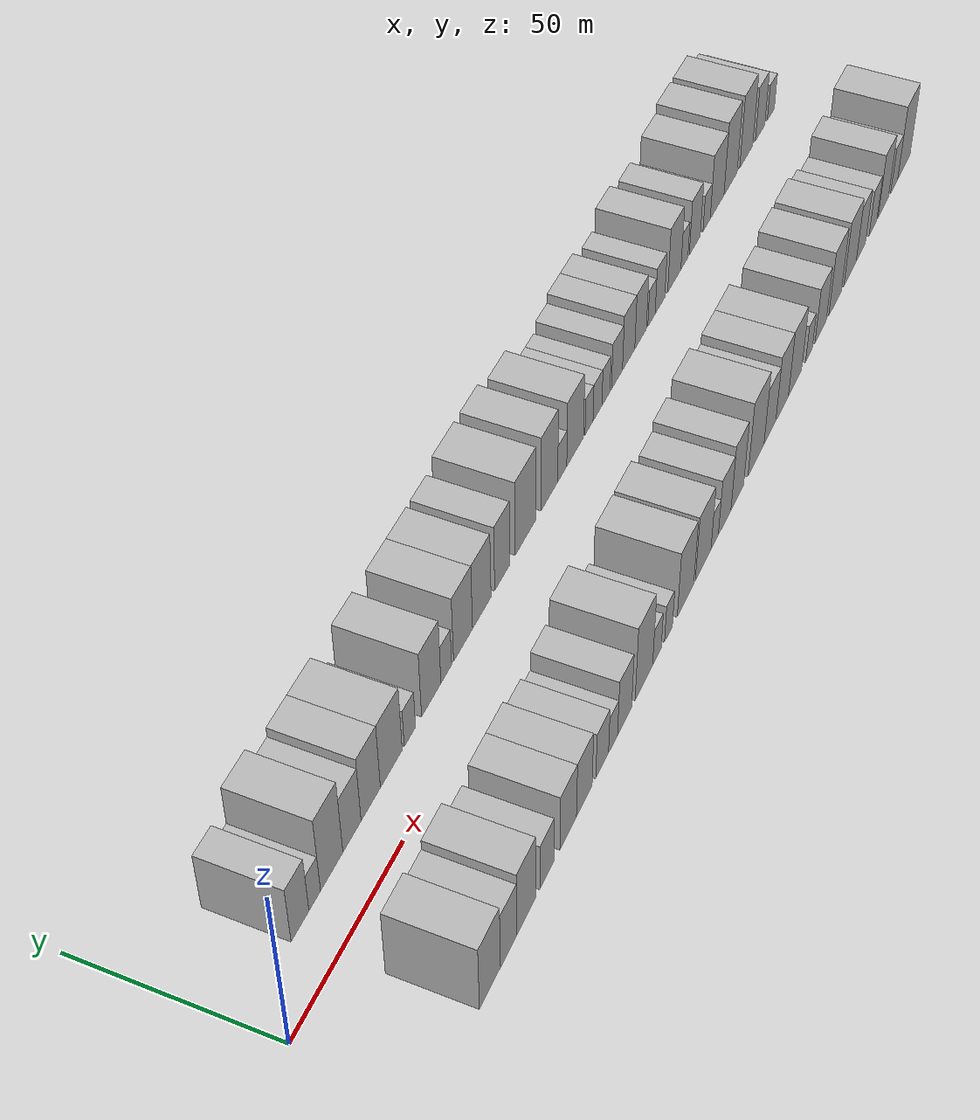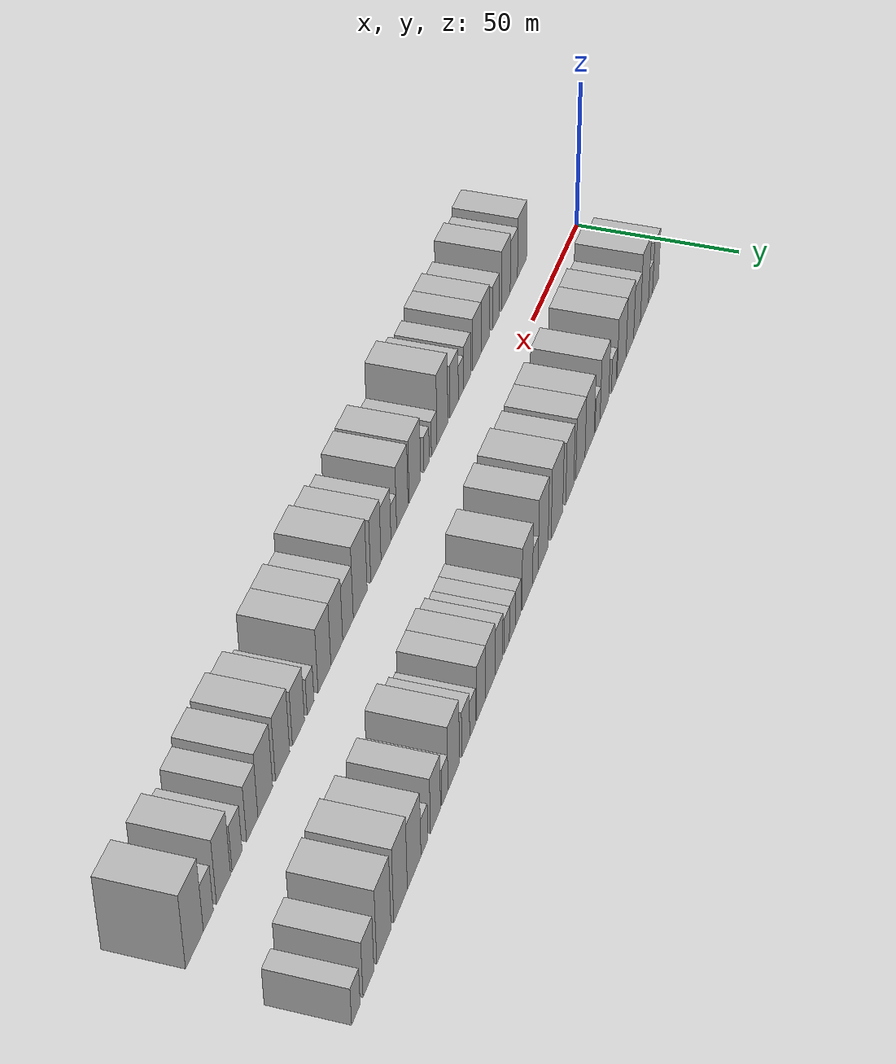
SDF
<sdf version="1.6">
 <world name="default">
  <scene>
   <sky><clouds><speed>12</speed></clouds></sky>
   <ambient>0.4 0.4 0.4 1</ambient>
   <background>0.7 0.7 0.7 1</background>
   <shadows>1</shadows>
  </scene>
  <gravity>0 0 -9.8066</gravity>
  <magnetic_field>6e-06 2.3e-05 -4.2e-05</magnetic_field>
  <physics default="0" name="default_physics" type="ode">
   <ode>
    <solver>
     <type>quick</type>
     <iters>10</iters>
     <sor>1.0</sor>
     <use_dynamic_moi_rescaling>0</use_dynamic_moi_rescaling>
    </solver>
    <constraints>
     <cfm>0</cfm>
     <erp>0.2</erp>
     <contact_max_correcting_vel>100</contact_max_correcting_vel>
     <contact_surface_layer>0.001</contact_surface_layer>
    </constraints>
   </ode>
   <max_step_size>0.004</max_step_size>
   <real_time_factor>1</real_time_factor>
   <real_time_update_rate>250</real_time_update_rate>
  </physics>
  <light name="sun" type="directional">
   <pose>0 0 10 0 0 0</pose>
   <diffuse>0.8 0.8 0.8 1</diffuse>
   <specular>0.2 0.2 0.2 1</specular>
   <attenuation>
    <range>1000</range>
    <constant>0.9</constant>
    <linear>0.01</linear>
    <quadratic>0.001</quadratic>
   </attenuation>
   <direction>-0.5 0.1 -0.9</direction>
  </light>
  <model name="building_1">
   <static>1</static>
   <pose>23.8435 20.0000 0 0.000000 0.000000 1.570796</pose>
   <link name="link">
    <pose>0 0 9.00 0 0 0</pose>
    <collision name="collision"><geometry><box><size>20.0000 7.6871 18.0000</size></box></geometry></collision>
    <visual name="visual">
     <cast_shadows>0</cast_shadows>
     <geometry><box><size>20.0000 7.6871 18.0000</size></box></geometry>
     <material>
      <script>
       <uri>model://HANNAS_wall/materials/scripts</uri>
       <uri>model://HANNAS_wall/materials/textures</uri>
       <name>vrc/HANNAS_wall</name>
      </script>
     </material>
    </visual>
   </link>
  </model>
  <model name="building_2">
   <static>1</static>
   <pose>30.2150 20.0000 0 0.000000 0.000000 1.570796</pose>
   <link name="link">
    <pose>0 0 6.00 0 0 0</pose>
    <collision name="collision"><geometry><box><size>20.0000 5.0559 12.0000</size></box></geometry></collision>
    <visual name="visual">
     <cast_shadows>0</cast_shadows>
     <geometry><box><size>20.0000 5.0559 12.0000</size></box></geometry>
     <material>
      <script>
       <uri>model://HANNAS_wall/materials/scripts</uri>
       <uri>model://HANNAS_wall/materials/textures</uri>
       <name>vrc/HANNAS_wall</name>
      </script>
     </material>
    </visual>
   </link>
  </model>
  <model name="building_3">
   <static>1</static>
   <pose>37.7222 20.0000 0 0.000000 0.000000 1.570796</pose>
   <link name="link">
    <pose>0 0 12.00 0 0 0</pose>
    <collision name="collision"><geometry><box><size>20.0000 9.9584 24.0000</size></box></geometry></collision>
    <visual name="visual">
     <cast_shadows>0</cast_shadows>
     <geometry><box><size>20.0000 9.9584 24.0000</size></box></geometry>
     <material>
      <script>
       <uri>model://HANNAS_wall/materials/scripts</uri>
       <uri>model://HANNAS_wall/materials/textures</uri>
       <name>vrc/HANNAS_wall</name>
      </script>
     </material>
    </visual>
   </link>
  </model>
  <model name="building_4">
   <static>1</static>
   <pose>46.8498 20.0000 0 0.000000 0.000000 1.570796</pose>
   <link name="link">
    <pose>0 0 9.00 0 0 0</pose>
    <collision name="collision"><geometry><box><size>20.0000 8.2967 18.0000</size></box></geometry></collision>
    <visual name="visual">
     <cast_shadows>0</cast_shadows>
     <geometry><box><size>20.0000 8.2967 18.0000</size></box></geometry>
     <material>
      <script>
       <uri>model://HANNAS_wall/materials/scripts</uri>
       <uri>model://HANNAS_wall/materials/textures</uri>
       <name>vrc/HANNAS_wall</name>
      </script>
     </material>
    </visual>
   </link>
  </model>
  <model name="building_5">
   <static>1</static>
   <pose>55.5143 20.0000 0 0.000000 0.000000 1.570796</pose>
   <link name="link">
    <pose>0 0 10.50 0 0 0</pose>
    <collision name="collision"><geometry><box><size>20.0000 9.0323 21.0000</size></box></geometry></collision>
    <visual name="visual">
     <cast_shadows>0</cast_shadows>
     <geometry><box><size>20.0000 9.0323 21.0000</size></box></geometry>
     <material>
      <script>
       <uri>model://HANNAS_wall/materials/scripts</uri>
       <uri>model://HANNAS_wall/materials/textures</uri>
       <name>vrc/HANNAS_wall</name>
      </script>
     </material>
    </visual>
   </link>
  </model>
  <model name="building_6">
   <static>1</static>
   <pose>65.2510 20.0000 0 0.000000 0.000000 1.570796</pose>
   <link name="link">
    <pose>0 0 10.50 0 0 0</pose>
    <collision name="collision"><geometry><box><size>20.0000 10.4411 21.0000</size></box></geometry></collision>
    <visual name="visual">
     <cast_shadows>0</cast_shadows>
     <geometry><box><size>20.0000 10.4411 21.0000</size></box></geometry>
     <material>
      <script>
       <uri>model://HANNAS_wall/materials/scripts</uri>
       <uri>model://HANNAS_wall/materials/textures</uri>
       <name>vrc/HANNAS_wall</name>
      </script>
     </material>
    </visual>
   </link>
  </model>
  <model name="building_7">
   <static>1</static>
   <pose>74.2370 20.0000 0 0.000000 0.000000 1.570796</pose>
   <link name="link">
    <pose>0 0 6.00 0 0 0</pose>
    <collision name="collision"><geometry><box><size>20.0000 5.5309 12.0000</size></box></geometry></collision>
    <visual name="visual">
     <cast_shadows>0</cast_shadows>
     <geometry><box><size>20.0000 5.5309 12.0000</size></box></geometry>
     <material>
      <script>
       <uri>model://HANNAS_wall/materials/scripts</uri>
       <uri>model://HANNAS_wall/materials/textures</uri>
       <name>vrc/HANNAS_wall</name>
      </script>
     </material>
    </visual>
   </link>
  </model>
  <model name="building_8">
   <static>1</static>
   <pose>84.8800 20.0000 0 0.000000 0.000000 1.570796</pose>
   <link name="link">
    <pose>0 0 10.50 0 0 0</pose>
    <collision name="collision"><geometry><box><size>20.0000 9.7551 21.0000</size></box></geometry></collision>
    <visual name="visual">
     <cast_shadows>0</cast_shadows>
     <geometry><box><size>20.0000 9.7551 21.0000</size></box></geometry>
     <material>
      <script>
       <uri>model://HANNAS_wall/materials/scripts</uri>
       <uri>model://HANNAS_wall/materials/textures</uri>
       <name>vrc/HANNAS_wall</name>
      </script>
     </material>
    </visual>
   </link>
  </model>
  <model name="building_9">
   <static>1</static>
   <pose>92.5117 20.0000 0 0.000000 0.000000 1.570796</pose>
   <link name="link">
    <pose>0 0 6.00 0 0 0</pose>
    <collision name="collision"><geometry><box><size>20.0000 5.5084 12.0000</size></box></geometry></collision>
    <visual name="visual">
     <cast_shadows>0</cast_shadows>
     <geometry><box><size>20.0000 5.5084 12.0000</size></box></geometry>
     <material>
      <script>
       <uri>model://HANNAS_wall/materials/scripts</uri>
       <uri>model://HANNAS_wall/materials/textures</uri>
       <name>vrc/HANNAS_wall</name>
      </script>
     </material>
    </visual>
   </link>
  </model>
  <model name="building_10">
   <static>1</static>
   <pose>101.2545 20.0000 0 0.000000 0.000000 1.570796</pose>
   <link name="link">
    <pose>0 0 10.50 0 0 0</pose>
    <collision name="collision"><geometry><box><size>20.0000 9.9771 21.0000</size></box></geometry></collision>
    <visual name="visual">
     <cast_shadows>0</cast_shadows>
     <geometry><box><size>20.0000 9.9771 21.0000</size></box></geometry>
     <material>
      <script>
       <uri>model://HANNAS_wall/materials/scripts</uri>
       <uri>model://HANNAS_wall/materials/textures</uri>
       <name>vrc/HANNAS_wall</name>
      </script>
     </material>
    </visual>
   </link>
  </model>
  <model name="building_11">
   <static>1</static>
   <pose>111.2242 20.0000 0 0.000000 0.000000 1.570796</pose>
   <link name="link">
    <pose>0 0 10.50 0 0 0</pose>
    <collision name="collision"><geometry><box><size>20.0000 9.9622 21.0000</size></box></geometry></collision>
    <visual name="visual">
     <cast_shadows>0</cast_shadows>
     <geometry><box><size>20.0000 9.9622 21.0000</size></box></geometry>
     <material>
      <script>
       <uri>model://HANNAS_wall/materials/scripts</uri>
       <uri>model://HANNAS_wall/materials/textures</uri>
       <name>vrc/HANNAS_wall</name>
      </script>
     </material>
    </visual>
   </link>
  </model>
  <model name="building_12">
   <static>1</static>
   <pose>122.4271 20.0000 0 0.000000 0.000000 1.570796</pose>
   <link name="link">
    <pose>0 0 10.50 0 0 0</pose>
    <collision name="collision"><geometry><box><size>20.0000 8.4437 21.0000</size></box></geometry></collision>
    <visual name="visual">
     <cast_shadows>0</cast_shadows>
     <geometry><box><size>20.0000 8.4437 21.0000</size></box></geometry>
     <material>
      <script>
       <uri>model://HANNAS_wall/materials/scripts</uri>
       <uri>model://HANNAS_wall/materials/textures</uri>
       <name>vrc/HANNAS_wall</name>
      </script>
     </material>
    </visual>
   </link>
  </model>
  <model name="building_13">
   <static>1</static>
   <pose>135.5499 20.0000 0 0.000000 0.000000 1.570796</pose>
   <link name="link">
    <pose>0 0 12.00 0 0 0</pose>
    <collision name="collision"><geometry><box><size>20.0000 11.8019 24.0000</size></box></geometry></collision>
    <visual name="visual">
     <cast_shadows>0</cast_shadows>
     <geometry><box><size>20.0000 11.8019 24.0000</size></box></geometry>
     <material>
      <script>
       <uri>model://HANNAS_wall/materials/scripts</uri>
       <uri>model://HANNAS_wall/materials/textures</uri>
       <name>vrc/HANNAS_wall</name>
      </script>
     </material>
    </visual>
   </link>
  </model>
  <model name="building_14">
   <static>1</static>
   <pose>149.3508 20.0000 0 0.000000 0.000000 1.570796</pose>
   <link name="link">
    <pose>0 0 12.00 0 0 0</pose>
    <collision name="collision"><geometry><box><size>20.0000 9.7998 24.0000</size></box></geometry></collision>
    <visual name="visual">
     <cast_shadows>0</cast_shadows>
     <geometry><box><size>20.0000 9.7998 24.0000</size></box></geometry>
     <material>
      <script>
       <uri>model://HANNAS_wall/materials/scripts</uri>
       <uri>model://HANNAS_wall/materials/textures</uri>
       <name>vrc/HANNAS_wall</name>
      </script>
     </material>
    </visual>
   </link>
  </model>
  <model name="building_15">
   <static>1</static>
   <pose>156.9666 20.0000 0 0.000000 0.000000 1.570796</pose>
   <link name="link">
    <pose>0 0 6.00 0 0 0</pose>
    <collision name="collision"><geometry><box><size>20.0000 5.4317 12.0000</size></box></geometry></collision>
    <visual name="visual">
     <cast_shadows>0</cast_shadows>
     <geometry><box><size>20.0000 5.4317 12.0000</size></box></geometry>
     <material>
      <script>
       <uri>model://HANNAS_wall/materials/scripts</uri>
       <uri>model://HANNAS_wall/materials/textures</uri>
       <name>vrc/HANNAS_wall</name>
      </script>
     </material>
    </visual>
   </link>
  </model>
  <model name="building_16">
   <static>1</static>
   <pose>164.7859 20.0000 0 0.000000 0.000000 1.570796</pose>
   <link name="link">
    <pose>0 0 10.50 0 0 0</pose>
    <collision name="collision"><geometry><box><size>20.0000 10.2070 21.0000</size></box></geometry></collision>
    <visual name="visual">
     <cast_shadows>0</cast_shadows>
     <geometry><box><size>20.0000 10.2070 21.0000</size></box></geometry>
     <material>
      <script>
       <uri>model://HANNAS_wall/materials/scripts</uri>
       <uri>model://HANNAS_wall/materials/textures</uri>
       <name>vrc/HANNAS_wall</name>
      </script>
     </material>
    </visual>
   </link>
  </model>
  <model name="building_17">
   <static>1</static>
   <pose>173.3860 20.0000 0 0.000000 0.000000 1.570796</pose>
   <link name="link">
    <pose>0 0 6.00 0 0 0</pose>
    <collision name="collision"><geometry><box><size>20.0000 4.9933 12.0000</size></box></geometry></collision>
    <visual name="visual">
     <cast_shadows>0</cast_shadows>
     <geometry><box><size>20.0000 4.9933 12.0000</size></box></geometry>
     <material>
      <script>
       <uri>model://HANNAS_wall/materials/scripts</uri>
       <uri>model://HANNAS_wall/materials/textures</uri>
       <name>vrc/HANNAS_wall</name>
      </script>
     </material>
    </visual>
   </link>
  </model>
  <model name="building_18">
   <static>1</static>
   <pose>178.7066 20.0000 0 0.000000 0.000000 1.570796</pose>
   <link name="link">
    <pose>0 0 6.00 0 0 0</pose>
    <collision name="collision"><geometry><box><size>20.0000 5.6479 12.0000</size></box></geometry></collision>
    <visual name="visual">
     <cast_shadows>0</cast_shadows>
     <geometry><box><size>20.0000 5.6479 12.0000</size></box></geometry>
     <material>
      <script>
       <uri>model://HANNAS_wall/materials/scripts</uri>
       <uri>model://HANNAS_wall/materials/textures</uri>
       <name>vrc/HANNAS_wall</name>
      </script>
     </material>
    </visual>
   </link>
  </model>
  <model name="building_19">
   <static>1</static>
   <pose>184.0761 20.0000 0 0.000000 0.000000 1.570796</pose>
   <link name="link">
    <pose>0 0 6.00 0 0 0</pose>
    <collision name="collision"><geometry><box><size>20.0000 5.0911 12.0000</size></box></geometry></collision>
    <visual name="visual">
     <cast_shadows>0</cast_shadows>
     <geometry><box><size>20.0000 5.0911 12.0000</size></box></geometry>
     <material>
      <script>
       <uri>model://HANNAS_wall/materials/scripts</uri>
       <uri>model://HANNAS_wall/materials/textures</uri>
       <name>vrc/HANNAS_wall</name>
      </script>
     </material>
    </visual>
   </link>
  </model>
  <model name="building_20">
   <static>1</static>
   <pose>191.1918 20.0000 0 0.000000 0.000000 1.570796</pose>
   <link name="link">
    <pose>0 0 7.50 0 0 0</pose>
    <collision name="collision"><geometry><box><size>20.0000 7.1403 15.0000</size></box></geometry></collision>
    <visual name="visual">
     <cast_shadows>0</cast_shadows>
     <geometry><box><size>20.0000 7.1403 15.0000</size></box></geometry>
     <material>
      <script>
       <uri>model://HANNAS_wall/materials/scripts</uri>
       <uri>model://HANNAS_wall/materials/textures</uri>
       <name>vrc/HANNAS_wall</name>
      </script>
     </material>
    </visual>
   </link>
  </model>
  <model name="building_21">
   <static>1</static>
   <pose>198.8291 20.0000 0 0.000000 0.000000 1.570796</pose>
   <link name="link">
    <pose>0 0 9.00 0 0 0</pose>
    <collision name="collision"><geometry><box><size>20.0000 8.1343 18.0000</size></box></geometry></collision>
    <visual name="visual">
     <cast_shadows>0</cast_shadows>
     <geometry><box><size>20.0000 8.1343 18.0000</size></box></geometry>
     <material>
      <script>
       <uri>model://HANNAS_wall/materials/scripts</uri>
       <uri>model://HANNAS_wall/materials/textures</uri>
       <name>vrc/HANNAS_wall</name>
      </script>
     </material>
    </visual>
   </link>
  </model>
  <model name="building_22">
   <static>1</static>
   <pose>206.7928 20.0000 0 0.000000 0.000000 1.570796</pose>
   <link name="link">
    <pose>0 0 9.00 0 0 0</pose>
    <collision name="collision"><geometry><box><size>20.0000 7.7930 18.0000</size></box></geometry></collision>
    <visual name="visual">
     <cast_shadows>0</cast_shadows>
     <geometry><box><size>20.0000 7.7930 18.0000</size></box></geometry>
     <material>
      <script>
       <uri>model://HANNAS_wall/materials/scripts</uri>
       <uri>model://HANNAS_wall/materials/textures</uri>
       <name>vrc/HANNAS_wall</name>
      </script>
     </material>
    </visual>
   </link>
  </model>
  <model name="building_23">
   <static>1</static>
   <pose>214.1908 20.0000 0 0.000000 0.000000 1.570796</pose>
   <link name="link">
    <pose>0 0 6.00 0 0 0</pose>
    <collision name="collision"><geometry><box><size>20.0000 5.0030 12.0000</size></box></geometry></collision>
    <visual name="visual">
     <cast_shadows>0</cast_shadows>
     <geometry><box><size>20.0000 5.0030 12.0000</size></box></geometry>
     <material>
      <script>
       <uri>model://HANNAS_wall/materials/scripts</uri>
       <uri>model://HANNAS_wall/materials/textures</uri>
       <name>vrc/HANNAS_wall</name>
      </script>
     </material>
    </visual>
   </link>
  </model>
  <model name="building_24">
   <static>1</static>
   <pose>220.0308 20.0000 0 0.000000 0.000000 1.570796</pose>
   <link name="link">
    <pose>0 0 7.50 0 0 0</pose>
    <collision name="collision"><geometry><box><size>20.0000 6.6769 15.0000</size></box></geometry></collision>
    <visual name="visual">
     <cast_shadows>0</cast_shadows>
     <geometry><box><size>20.0000 6.6769 15.0000</size></box></geometry>
     <material>
      <script>
       <uri>model://HANNAS_wall/materials/scripts</uri>
       <uri>model://HANNAS_wall/materials/textures</uri>
       <name>vrc/HANNAS_wall</name>
      </script>
     </material>
    </visual>
   </link>
  </model>
  <model name="building_25">
   <static>1</static>
   <pose>230.0644 20.0000 0 0.000000 0.000000 1.570796</pose>
   <link name="link">
    <pose>0 0 10.50 0 0 0</pose>
    <collision name="collision"><geometry><box><size>20.0000 9.3903 21.0000</size></box></geometry></collision>
    <visual name="visual">
     <cast_shadows>0</cast_shadows>
     <geometry><box><size>20.0000 9.3903 21.0000</size></box></geometry>
     <material>
      <script>
       <uri>model://HANNAS_wall/materials/scripts</uri>
       <uri>model://HANNAS_wall/materials/textures</uri>
       <name>vrc/HANNAS_wall</name>
      </script>
     </material>
    </visual>
   </link>
  </model>
  <model name="building_26">
   <static>1</static>
   <pose>237.2728 20.0000 0 0.000000 0.000000 1.570796</pose>
   <link name="link">
    <pose>0 0 6.00 0 0 0</pose>
    <collision name="collision"><geometry><box><size>20.0000 5.0264 12.0000</size></box></geometry></collision>
    <visual name="visual">
     <cast_shadows>0</cast_shadows>
     <geometry><box><size>20.0000 5.0264 12.0000</size></box></geometry>
     <material>
      <script>
       <uri>model://HANNAS_wall/materials/scripts</uri>
       <uri>model://HANNAS_wall/materials/textures</uri>
       <name>vrc/HANNAS_wall</name>
      </script>
     </material>
    </visual>
   </link>
  </model>
  <model name="building_27">
   <static>1</static>
   <pose>244.8036 20.0000 0 0.000000 0.000000 1.570796</pose>
   <link name="link">
    <pose>0 0 9.00 0 0 0</pose>
    <collision name="collision"><geometry><box><size>20.0000 8.0354 18.0000</size></box></geometry></collision>
    <visual name="visual">
     <cast_shadows>0</cast_shadows>
     <geometry><box><size>20.0000 8.0354 18.0000</size></box></geometry>
     <material>
      <script>
       <uri>model://HANNAS_wall/materials/scripts</uri>
       <uri>model://HANNAS_wall/materials/textures</uri>
       <name>vrc/HANNAS_wall</name>
      </script>
     </material>
    </visual>
   </link>
  </model>
  <model name="building_28">
   <static>1</static>
   <pose>253.5256 20.0000 0 0.000000 0.000000 1.570796</pose>
   <link name="link">
    <pose>0 0 6.00 0 0 0</pose>
    <collision name="collision"><geometry><box><size>20.0000 5.4085 12.0000</size></box></geometry></collision>
    <visual name="visual">
     <cast_shadows>0</cast_shadows>
     <geometry><box><size>20.0000 5.4085 12.0000</size></box></geometry>
     <material>
      <script>
       <uri>model://HANNAS_wall/materials/scripts</uri>
       <uri>model://HANNAS_wall/materials/textures</uri>
       <name>vrc/HANNAS_wall</name>
      </script>
     </material>
    </visual>
   </link>
  </model>
  <model name="building_29">
   <static>1</static>
   <pose>261.4427 20.0000 0 0.000000 0.000000 1.570796</pose>
   <link name="link">
    <pose>0 0 10.50 0 0 0</pose>
    <collision name="collision"><geometry><box><size>20.0000 10.4257 21.0000</size></box></geometry></collision>
    <visual name="visual">
     <cast_shadows>0</cast_shadows>
     <geometry><box><size>20.0000 10.4257 21.0000</size></box></geometry>
     <material>
      <script>
       <uri>model://HANNAS_wall/materials/scripts</uri>
       <uri>model://HANNAS_wall/materials/textures</uri>
       <name>vrc/HANNAS_wall</name>
      </script>
     </material>
    </visual>
   </link>
  </model>
  <model name="building_30">
   <static>1</static>
   <pose>271.7292 20.0000 0 0.000000 0.000000 1.570796</pose>
   <link name="link">
    <pose>0 0 12.00 0 0 0</pose>
    <collision name="collision"><geometry><box><size>20.0000 10.1475 24.0000</size></box></geometry></collision>
    <visual name="visual">
     <cast_shadows>0</cast_shadows>
     <geometry><box><size>20.0000 10.1475 24.0000</size></box></geometry>
     <material>
      <script>
       <uri>model://HANNAS_wall/materials/scripts</uri>
       <uri>model://HANNAS_wall/materials/textures</uri>
       <name>vrc/HANNAS_wall</name>
      </script>
     </material>
    </visual>
   </link>
  </model>
  <model name="building_31">
   <static>1</static>
   <pose>283.9838 20.0000 0 0.000000 0.000000 1.570796</pose>
   <link name="link">
    <pose>0 0 12.00 0 0 0</pose>
    <collision name="collision"><geometry><box><size>20.0000 10.3616 24.0000</size></box></geometry></collision>
    <visual name="visual">
     <cast_shadows>0</cast_shadows>
     <geometry><box><size>20.0000 10.3616 24.0000</size></box></geometry>
     <material>
      <script>
       <uri>model://HANNAS_wall/materials/scripts</uri>
       <uri>model://HANNAS_wall/materials/textures</uri>
       <name>vrc/HANNAS_wall</name>
      </script>
     </material>
    </visual>
   </link>
  </model>
  <model name="building_32">
   <static>1</static>
   <pose>295.0249 20.0000 0 0.000000 0.000000 1.570796</pose>
   <link name="link">
    <pose>0 0 9.00 0 0 0</pose>
    <collision name="collision"><geometry><box><size>20.0000 7.7207 18.0000</size></box></geometry></collision>
    <visual name="visual">
     <cast_shadows>0</cast_shadows>
     <geometry><box><size>20.0000 7.7207 18.0000</size></box></geometry>
     <material>
      <script>
       <uri>model://HANNAS_wall/materials/scripts</uri>
       <uri>model://HANNAS_wall/materials/textures</uri>
       <name>vrc/HANNAS_wall</name>
      </script>
     </material>
    </visual>
   </link>
  </model>
  <model name="building_33">
   <static>1</static>
   <pose>303.8364 20.0000 0 0.000000 0.000000 1.570796</pose>
   <link name="link">
    <pose>0 0 6.00 0 0 0</pose>
    <collision name="collision"><geometry><box><size>20.0000 5.9021 12.0000</size></box></geometry></collision>
    <visual name="visual">
     <cast_shadows>0</cast_shadows>
     <geometry><box><size>20.0000 5.9021 12.0000</size></box></geometry>
     <material>
      <script>
       <uri>model://HANNAS_wall/materials/scripts</uri>
       <uri>model://HANNAS_wall/materials/textures</uri>
       <name>vrc/HANNAS_wall</name>
      </script>
     </material>
    </visual>
   </link>
  </model>
  <model name="building_34">
   <static>1</static>
   <pose>25.9748 -20.0000 0 0.000000 0.000000 1.570796</pose>
   <link name="link">
    <pose>0 0 10.50 0 0 0</pose>
    <collision name="collision"><geometry><box><size>20.0000 9.9496 21.0000</size></box></geometry></collision>
    <visual name="visual">
     <cast_shadows>0</cast_shadows>
     <geometry><box><size>20.0000 9.9496 21.0000</size></box></geometry>
     <material>
      <script>
       <uri>model://HANNAS_wall/materials/scripts</uri>
       <uri>model://HANNAS_wall/materials/textures</uri>
       <name>vrc/HANNAS_wall</name>
      </script>
     </material>
    </visual>
   </link>
  </model>
  <model name="building_35">
   <static>1</static>
   <pose>34.9045 -20.0000 0 0.000000 0.000000 1.570796</pose>
   <link name="link">
    <pose>0 0 9.00 0 0 0</pose>
    <collision name="collision"><geometry><box><size>20.0000 7.9098 18.0000</size></box></geometry></collision>
    <visual name="visual">
     <cast_shadows>0</cast_shadows>
     <geometry><box><size>20.0000 7.9098 18.0000</size></box></geometry>
     <material>
      <script>
       <uri>model://HANNAS_wall/materials/scripts</uri>
       <uri>model://HANNAS_wall/materials/textures</uri>
       <name>vrc/HANNAS_wall</name>
      </script>
     </material>
    </visual>
   </link>
  </model>
  <model name="building_36">
   <static>1</static>
   <pose>43.5844 -20.0000 0 0.000000 0.000000 1.570796</pose>
   <link name="link">
    <pose>0 0 10.50 0 0 0</pose>
    <collision name="collision"><geometry><box><size>20.0000 9.4499 21.0000</size></box></geometry></collision>
    <visual name="visual">
     <cast_shadows>0</cast_shadows>
     <geometry><box><size>20.0000 9.4499 21.0000</size></box></geometry>
     <material>
      <script>
       <uri>model://HANNAS_wall/materials/scripts</uri>
       <uri>model://HANNAS_wall/materials/textures</uri>
       <name>vrc/HANNAS_wall</name>
      </script>
     </material>
    </visual>
   </link>
  </model>
  <model name="building_37">
   <static>1</static>
   <pose>53.9609 -20.0000 0 0.000000 0.000000 1.570796</pose>
   <link name="link">
    <pose>0 0 7.50 0 0 0</pose>
    <collision name="collision"><geometry><box><size>20.0000 7.3030 15.0000</size></box></geometry></collision>
    <visual name="visual">
     <cast_shadows>0</cast_shadows>
     <geometry><box><size>20.0000 7.3030 15.0000</size></box></geometry>
     <material>
      <script>
       <uri>model://HANNAS_wall/materials/scripts</uri>
       <uri>model://HANNAS_wall/materials/textures</uri>
       <name>vrc/HANNAS_wall</name>
      </script>
     </material>
    </visual>
   </link>
  </model>
  <model name="building_38">
   <static>1</static>
   <pose>64.9769 -20.0000 0 0.000000 0.000000 1.570796</pose>
   <link name="link">
    <pose>0 0 9.00 0 0 0</pose>
    <collision name="collision"><geometry><box><size>20.0000 8.7290 18.0000</size></box></geometry></collision>
    <visual name="visual">
     <cast_shadows>0</cast_shadows>
     <geometry><box><size>20.0000 8.7290 18.0000</size></box></geometry>
     <material>
      <script>
       <uri>model://HANNAS_wall/materials/scripts</uri>
       <uri>model://HANNAS_wall/materials/textures</uri>
       <name>vrc/HANNAS_wall</name>
      </script>
     </material>
    </visual>
   </link>
  </model>
  <model name="building_39">
   <static>1</static>
   <pose>73.5708 -20.0000 0 0.000000 0.000000 1.570796</pose>
   <link name="link">
    <pose>0 0 9.00 0 0 0</pose>
    <collision name="collision"><geometry><box><size>20.0000 8.4587 18.0000</size></box></geometry></collision>
    <visual name="visual">
     <cast_shadows>0</cast_shadows>
     <geometry><box><size>20.0000 8.4587 18.0000</size></box></geometry>
     <material>
      <script>
       <uri>model://HANNAS_wall/materials/scripts</uri>
       <uri>model://HANNAS_wall/materials/textures</uri>
       <name>vrc/HANNAS_wall</name>
      </script>
     </material>
    </visual>
   </link>
  </model>
  <model name="building_40">
   <static>1</static>
   <pose>83.3211 -20.0000 0 0.000000 0.000000 1.570796</pose>
   <link name="link">
    <pose>0 0 7.50 0 0 0</pose>
    <collision name="collision"><geometry><box><size>20.0000 7.0421 15.0000</size></box></geometry></collision>
    <visual name="visual">
     <cast_shadows>0</cast_shadows>
     <geometry><box><size>20.0000 7.0421 15.0000</size></box></geometry>
     <material>
      <script>
       <uri>model://HANNAS_wall/materials/scripts</uri>
       <uri>model://HANNAS_wall/materials/textures</uri>
       <name>vrc/HANNAS_wall</name>
      </script>
     </material>
    </visual>
   </link>
  </model>
  <model name="building_41">
   <static>1</static>
   <pose>89.3647 -20.0000 0 0.000000 0.000000 1.570796</pose>
   <link name="link">
    <pose>0 0 6.00 0 0 0</pose>
    <collision name="collision"><geometry><box><size>20.0000 5.0450 12.0000</size></box></geometry></collision>
    <visual name="visual">
     <cast_shadows>0</cast_shadows>
     <geometry><box><size>20.0000 5.0450 12.0000</size></box></geometry>
     <material>
      <script>
       <uri>model://HANNAS_wall/materials/scripts</uri>
       <uri>model://HANNAS_wall/materials/textures</uri>
       <name>vrc/HANNAS_wall</name>
      </script>
     </material>
    </visual>
   </link>
  </model>
  <model name="building_42">
   <static>1</static>
   <pose>95.9271 -20.0000 0 0.000000 0.000000 1.570796</pose>
   <link name="link">
    <pose>0 0 9.00 0 0 0</pose>
    <collision name="collision"><geometry><box><size>20.0000 8.0798 18.0000</size></box></geometry></collision>
    <visual name="visual">
     <cast_shadows>0</cast_shadows>
     <geometry><box><size>20.0000 8.0798 18.0000</size></box></geometry>
     <material>
      <script>
       <uri>model://HANNAS_wall/materials/scripts</uri>
       <uri>model://HANNAS_wall/materials/textures</uri>
       <name>vrc/HANNAS_wall</name>
      </script>
     </material>
    </visual>
   </link>
  </model>
  <model name="building_43">
   <static>1</static>
   <pose>107.0992 -20.0000 0 0.000000 0.000000 1.570796</pose>
   <link name="link">
    <pose>0 0 12.00 0 0 0</pose>
    <collision name="collision"><geometry><box><size>20.0000 10.2644 24.0000</size></box></geometry></collision>
    <visual name="visual">
     <cast_shadows>0</cast_shadows>
     <geometry><box><size>20.0000 10.2644 24.0000</size></box></geometry>
     <material>
      <script>
       <uri>model://HANNAS_wall/materials/scripts</uri>
       <uri>model://HANNAS_wall/materials/textures</uri>
       <name>vrc/HANNAS_wall</name>
      </script>
     </material>
    </visual>
   </link>
  </model>
  <model name="building_44">
   <static>1</static>
   <pose>114.8140 -20.0000 0 0.000000 0.000000 1.570796</pose>
   <link name="link">
    <pose>0 0 6.00 0 0 0</pose>
    <collision name="collision"><geometry><box><size>20.0000 5.1652 12.0000</size></box></geometry></collision>
    <visual name="visual">
     <cast_shadows>0</cast_shadows>
     <geometry><box><size>20.0000 5.1652 12.0000</size></box></geometry>
     <material>
      <script>
       <uri>model://HANNAS_wall/materials/scripts</uri>
       <uri>model://HANNAS_wall/materials/textures</uri>
       <name>vrc/HANNAS_wall</name>
      </script>
     </material>
    </visual>
   </link>
  </model>
  <model name="building_45">
   <static>1</static>
   <pose>121.8122 -20.0000 0 0.000000 0.000000 1.570796</pose>
   <link name="link">
    <pose>0 0 6.00 0 0 0</pose>
    <collision name="collision"><geometry><box><size>20.0000 4.8312 12.0000</size></box></geometry></collision>
    <visual name="visual">
     <cast_shadows>0</cast_shadows>
     <geometry><box><size>20.0000 4.8312 12.0000</size></box></geometry>
     <material>
      <script>
       <uri>model://HANNAS_wall/materials/scripts</uri>
       <uri>model://HANNAS_wall/materials/textures</uri>
       <name>vrc/HANNAS_wall</name>
      </script>
     </material>
    </visual>
   </link>
  </model>
  <model name="building_46">
   <static>1</static>
   <pose>132.3742 -20.0000 0 0.000000 0.000000 1.570796</pose>
   <link name="link">
    <pose>0 0 10.50 0 0 0</pose>
    <collision name="collision"><geometry><box><size>20.0000 10.2928 21.0000</size></box></geometry></collision>
    <visual name="visual">
     <cast_shadows>0</cast_shadows>
     <geometry><box><size>20.0000 10.2928 21.0000</size></box></geometry>
     <material>
      <script>
       <uri>model://HANNAS_wall/materials/scripts</uri>
       <uri>model://HANNAS_wall/materials/textures</uri>
       <name>vrc/HANNAS_wall</name>
      </script>
     </material>
    </visual>
   </link>
  </model>
  <model name="building_47">
   <static>1</static>
   <pose>143.5329 -20.0000 0 0.000000 0.000000 1.570796</pose>
   <link name="link">
    <pose>0 0 10.50 0 0 0</pose>
    <collision name="collision"><geometry><box><size>20.0000 10.0245 21.0000</size></box></geometry></collision>
    <visual name="visual">
     <cast_shadows>0</cast_shadows>
     <geometry><box><size>20.0000 10.0245 21.0000</size></box></geometry>
     <material>
      <script>
       <uri>model://HANNAS_wall/materials/scripts</uri>
       <uri>model://HANNAS_wall/materials/textures</uri>
       <name>vrc/HANNAS_wall</name>
      </script>
     </material>
    </visual>
   </link>
  </model>
  <model name="building_48">
   <static>1</static>
   <pose>150.9754 -20.0000 0 0.000000 0.000000 1.570796</pose>
   <link name="link">
    <pose>0 0 6.00 0 0 0</pose>
    <collision name="collision"><geometry><box><size>20.0000 4.8605 12.0000</size></box></geometry></collision>
    <visual name="visual">
     <cast_shadows>0</cast_shadows>
     <geometry><box><size>20.0000 4.8605 12.0000</size></box></geometry>
     <material>
      <script>
       <uri>model://HANNAS_wall/materials/scripts</uri>
       <uri>model://HANNAS_wall/materials/textures</uri>
       <name>vrc/HANNAS_wall</name>
      </script>
     </material>
    </visual>
   </link>
  </model>
  <model name="building_49">
   <static>1</static>
   <pose>157.6014 -20.0000 0 0.000000 0.000000 1.570796</pose>
   <link name="link">
    <pose>0 0 9.00 0 0 0</pose>
    <collision name="collision"><geometry><box><size>20.0000 8.3913 18.0000</size></box></geometry></collision>
    <visual name="visual">
     <cast_shadows>0</cast_shadows>
     <geometry><box><size>20.0000 8.3913 18.0000</size></box></geometry>
     <material>
      <script>
       <uri>model://HANNAS_wall/materials/scripts</uri>
       <uri>model://HANNAS_wall/materials/textures</uri>
       <name>vrc/HANNAS_wall</name>
      </script>
     </material>
    </visual>
   </link>
  </model>
  <model name="building_50">
   <static>1</static>
   <pose>166.0972 -20.0000 0 0.000000 0.000000 1.570796</pose>
   <link name="link">
    <pose>0 0 10.50 0 0 0</pose>
    <collision name="collision"><geometry><box><size>20.0000 8.6005 21.0000</size></box></geometry></collision>
    <visual name="visual">
     <cast_shadows>0</cast_shadows>
     <geometry><box><size>20.0000 8.6005 21.0000</size></box></geometry>
     <material>
      <script>
       <uri>model://HANNAS_wall/materials/scripts</uri>
       <uri>model://HANNAS_wall/materials/textures</uri>
       <name>vrc/HANNAS_wall</name>
      </script>
     </material>
    </visual>
   </link>
  </model>
  <model name="building_51">
   <static>1</static>
   <pose>179.0038 -20.0000 0 0.000000 0.000000 1.570796</pose>
   <link name="link">
    <pose>0 0 12.00 0 0 0</pose>
    <collision name="collision"><geometry><box><size>20.0000 11.2127 24.0000</size></box></geometry></collision>
    <visual name="visual">
     <cast_shadows>0</cast_shadows>
     <geometry><box><size>20.0000 11.2127 24.0000</size></box></geometry>
     <material>
      <script>
       <uri>model://HANNAS_wall/materials/scripts</uri>
       <uri>model://HANNAS_wall/materials/textures</uri>
       <name>vrc/HANNAS_wall</name>
      </script>
     </material>
    </visual>
   </link>
  </model>
  <model name="building_52">
   <static>1</static>
   <pose>188.8287 -20.0000 0 0.000000 0.000000 1.570796</pose>
   <link name="link">
    <pose>0 0 9.00 0 0 0</pose>
    <collision name="collision"><geometry><box><size>20.0000 8.4371 18.0000</size></box></geometry></collision>
    <visual name="visual">
     <cast_shadows>0</cast_shadows>
     <geometry><box><size>20.0000 8.4371 18.0000</size></box></geometry>
     <material>
      <script>
       <uri>model://HANNAS_wall/materials/scripts</uri>
       <uri>model://HANNAS_wall/materials/textures</uri>
       <name>vrc/HANNAS_wall</name>
      </script>
     </material>
    </visual>
   </link>
  </model>
  <model name="building_53">
   <static>1</static>
   <pose>197.6597 -20.0000 0 0.000000 0.000000 1.570796</pose>
   <link name="link">
    <pose>0 0 10.50 0 0 0</pose>
    <collision name="collision"><geometry><box><size>20.0000 9.2249 21.0000</size></box></geometry></collision>
    <visual name="visual">
     <cast_shadows>0</cast_shadows>
     <geometry><box><size>20.0000 9.2249 21.0000</size></box></geometry>
     <material>
      <script>
       <uri>model://HANNAS_wall/materials/scripts</uri>
       <uri>model://HANNAS_wall/materials/textures</uri>
       <name>vrc/HANNAS_wall</name>
      </script>
     </material>
    </visual>
   </link>
  </model>
  <model name="building_54">
   <static>1</static>
   <pose>207.1942 -20.0000 0 0.000000 0.000000 1.570796</pose>
   <link name="link">
    <pose>0 0 10.50 0 0 0</pose>
    <collision name="collision"><geometry><box><size>20.0000 9.8440 21.0000</size></box></geometry></collision>
    <visual name="visual">
     <cast_shadows>0</cast_shadows>
     <geometry><box><size>20.0000 9.8440 21.0000</size></box></geometry>
     <material>
      <script>
       <uri>model://HANNAS_wall/materials/scripts</uri>
       <uri>model://HANNAS_wall/materials/textures</uri>
       <name>vrc/HANNAS_wall</name>
      </script>
     </material>
    </visual>
   </link>
  </model>
  <model name="building_55">
   <static>1</static>
   <pose>217.6790 -20.0000 0 0.000000 0.000000 1.570796</pose>
   <link name="link">
    <pose>0 0 6.00 0 0 0</pose>
    <collision name="collision"><geometry><box><size>20.0000 5.1256 12.0000</size></box></geometry></collision>
    <visual name="visual">
     <cast_shadows>0</cast_shadows>
     <geometry><box><size>20.0000 5.1256 12.0000</size></box></geometry>
     <material>
      <script>
       <uri>model://HANNAS_wall/materials/scripts</uri>
       <uri>model://HANNAS_wall/materials/textures</uri>
       <name>vrc/HANNAS_wall</name>
      </script>
     </material>
    </visual>
   </link>
  </model>
  <model name="building_56">
   <static>1</static>
   <pose>226.6392 -20.0000 0 0.000000 0.000000 1.570796</pose>
   <link name="link">
    <pose>0 0 9.00 0 0 0</pose>
    <collision name="collision"><geometry><box><size>20.0000 8.7950 18.0000</size></box></geometry></collision>
    <visual name="visual">
     <cast_shadows>0</cast_shadows>
     <geometry><box><size>20.0000 8.7950 18.0000</size></box></geometry>
     <material>
      <script>
       <uri>model://HANNAS_wall/materials/scripts</uri>
       <uri>model://HANNAS_wall/materials/textures</uri>
       <name>vrc/HANNAS_wall</name>
      </script>
     </material>
    </visual>
   </link>
  </model>
  <model name="building_57">
   <static>1</static>
   <pose>238.0800 -20.0000 0 0.000000 0.000000 1.570796</pose>
   <link name="link">
    <pose>0 0 10.50 0 0 0</pose>
    <collision name="collision"><geometry><box><size>20.0000 10.0865 21.0000</size></box></geometry></collision>
    <visual name="visual">
     <cast_shadows>0</cast_shadows>
     <geometry><box><size>20.0000 10.0865 21.0000</size></box></geometry>
     <material>
      <script>
       <uri>model://HANNAS_wall/materials/scripts</uri>
       <uri>model://HANNAS_wall/materials/textures</uri>
       <name>vrc/HANNAS_wall</name>
      </script>
     </material>
    </visual>
   </link>
  </model>
  <model name="building_58">
   <static>1</static>
   <pose>250.2219 -20.0000 0 0.000000 0.000000 1.570796</pose>
   <link name="link">
    <pose>0 0 10.50 0 0 0</pose>
    <collision name="collision"><geometry><box><size>20.0000 10.1973 21.0000</size></box></geometry></collision>
    <visual name="visual">
     <cast_shadows>0</cast_shadows>
     <geometry><box><size>20.0000 10.1973 21.0000</size></box></geometry>
     <material>
      <script>
       <uri>model://HANNAS_wall/materials/scripts</uri>
       <uri>model://HANNAS_wall/materials/textures</uri>
       <name>vrc/HANNAS_wall</name>
      </script>
     </material>
    </visual>
   </link>
  </model>
  <model name="building_59">
   <static>1</static>
   <pose>259.1678 -20.0000 0 0.000000 0.000000 1.570796</pose>
   <link name="link">
    <pose>0 0 9.00 0 0 0</pose>
    <collision name="collision"><geometry><box><size>20.0000 7.6945 18.0000</size></box></geometry></collision>
    <visual name="visual">
     <cast_shadows>0</cast_shadows>
     <geometry><box><size>20.0000 7.6945 18.0000</size></box></geometry>
     <material>
      <script>
       <uri>model://HANNAS_wall/materials/scripts</uri>
       <uri>model://HANNAS_wall/materials/textures</uri>
       <name>vrc/HANNAS_wall</name>
      </script>
     </material>
    </visual>
   </link>
  </model>
  <model name="building_60">
   <static>1</static>
   <pose>269.3296 -20.0000 0 0.000000 0.000000 1.570796</pose>
   <link name="link">
    <pose>0 0 7.50 0 0 0</pose>
    <collision name="collision"><geometry><box><size>20.0000 6.6291 15.0000</size></box></geometry></collision>
    <visual name="visual">
     <cast_shadows>0</cast_shadows>
     <geometry><box><size>20.0000 6.6291 15.0000</size></box></geometry>
     <material>
      <script>
       <uri>model://HANNAS_wall/materials/scripts</uri>
       <uri>model://HANNAS_wall/materials/textures</uri>
       <name>vrc/HANNAS_wall</name>
      </script>
     </material>
    </visual>
   </link>
  </model>
  <model name="building_61">
   <static>1</static>
   <pose>278.2089 -20.0000 0 0.000000 0.000000 1.570796</pose>
   <link name="link">
    <pose>0 0 10.50 0 0 0</pose>
    <collision name="collision"><geometry><box><size>20.0000 9.1297 21.0000</size></box></geometry></collision>
    <visual name="visual">
     <cast_shadows>0</cast_shadows>
     <geometry><box><size>20.0000 9.1297 21.0000</size></box></geometry>
     <material>
      <script>
       <uri>model://HANNAS_wall/materials/scripts</uri>
       <uri>model://HANNAS_wall/materials/textures</uri>
       <name>vrc/HANNAS_wall</name>
      </script>
     </material>
    </visual>
   </link>
  </model>
  <model name="building_62">
   <static>1</static>
   <pose>287.9173 -20.0000 0 0.000000 0.000000 1.570796</pose>
   <link name="link">
    <pose>0 0 7.50 0 0 0</pose>
    <collision name="collision"><geometry><box><size>20.0000 6.2871 15.0000</size></box></geometry></collision>
    <visual name="visual">
     <cast_shadows>0</cast_shadows>
     <geometry><box><size>20.0000 6.2871 15.0000</size></box></geometry>
     <material>
      <script>
       <uri>model://HANNAS_wall/materials/scripts</uri>
       <uri>model://HANNAS_wall/materials/textures</uri>
       <name>vrc/HANNAS_wall</name>
      </script>
     </material>
    </visual>
   </link>
  </model>
  <model name="building_63">
   <static>1</static>
   <pose>296.6266 -20.0000 0 0.000000 0.000000 1.570796</pose>
   <link name="link">
    <pose>0 0 12.00 0 0 0</pose>
    <collision name="collision"><geometry><box><size>20.0000 11.1316 24.0000</size></box></geometry></collision>
    <visual name="visual">
     <cast_shadows>0</cast_shadows>
     <geometry><box><size>20.0000 11.1316 24.0000</size></box></geometry>
     <material>
      <script>
       <uri>model://HANNAS_wall/materials/scripts</uri>
       <uri>model://HANNAS_wall/materials/textures</uri>
       <name>vrc/HANNAS_wall</name>
      </script>
     </material>
    </visual>
   </link>
  </model>
 </world>
</sdf>
